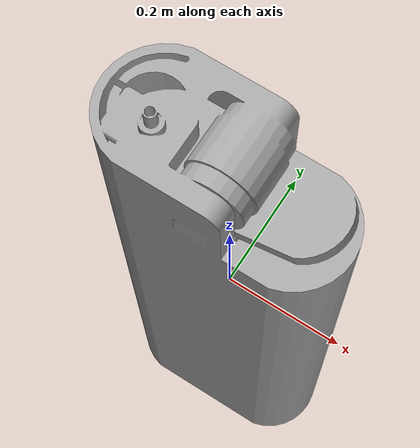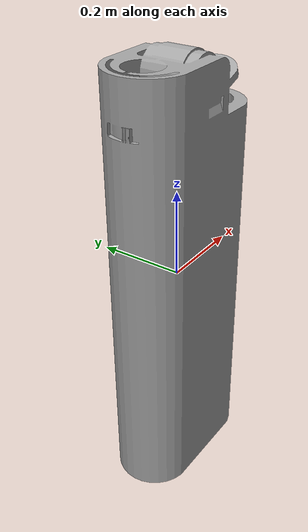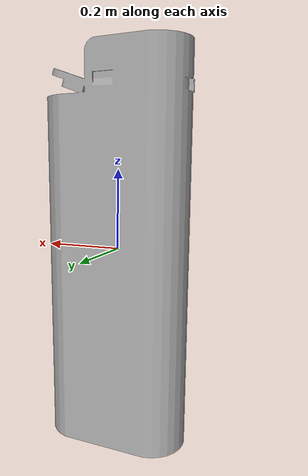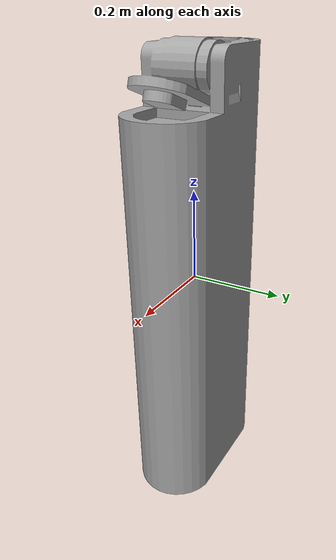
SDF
<?xml version="1.0" ?>
<sdf version="1.5">
  <model name='lighter8'>
    <pose>0 0 0 0 0 0</pose>
    <static>1</static>
    <link name='body'>
      <collision name="lighter8-coll">
        <pose>0 0 -0.5 0 0 0</pose>
        <geometry>
          <mesh>
            <uri>model://lighter8/meshes/lighter8.dae</uri>
          </mesh>
        </geometry>
      </collision>
      <visual name='lighter8'>
        <cast_shadows>1</cast_shadows>
        <pose>0 0 -0.5 0 0 0</pose>
        <geometry>
          <mesh>
            <uri>model://lighter8/meshes/lighter8.dae</uri>
          </mesh>
        </geometry>
      </visual>
      <velocity_decay>
        <linear>0</linear>
        <angular>0</angular>
      </velocity_decay>
      <self_collide>0</self_collide>
      <kinematic>0</kinematic>
      <gravity>1</gravity>
    </link>
  </model>

</sdf>
